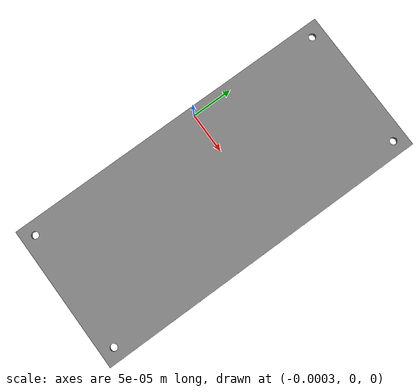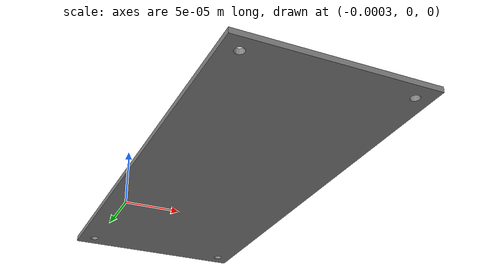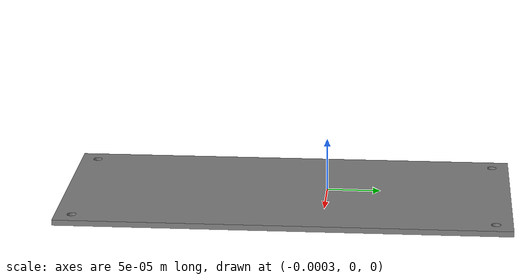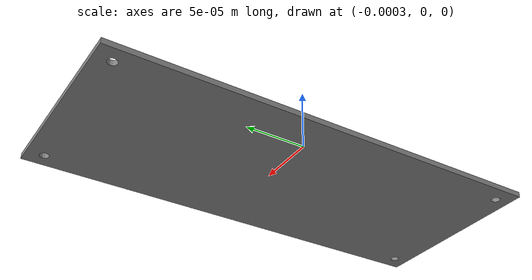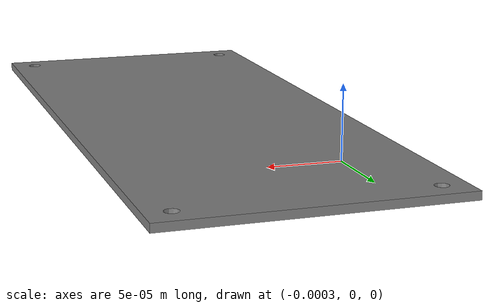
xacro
<?xml version="1.0"?>
<robot xmlns:xacro="http://www.ros.org/wiki/xacro" name="amr_robot">

  <!-- 定义属性 -->
  <xacro:property name="base_color" value="0.5 0.5 0.5 1.0"/>
  <xacro:property name="stl_scale" value="0.001 0.001 0.001"/>
  <xacro:property name="base_link_mass" value="50.0"/>

  <!-- 虚拟根链接 (world) -->
  <link name="world"/>

  <!-- base_link 通过固定关节连接到 world -->
  <joint name="fixed_base" type="fixed">
    <parent link="world"/>
    <child link="base_link"/>
    <origin xyz="0 0 0" rpy="0 0 0"/>
  </joint>

  <!-- 底盘 (base_link) -->
  <link name="base_link">
    <visual>
      <geometry>
        <mesh filename="package://amr_description/meshes/base_link.stl" scale="${stl_scale}"/>
      </geometry>
      <material name="grey">
        <color rgba="${base_color}"/>
      </material>
    </visual>
    <collision>
      <geometry>
        <mesh filename="package://amr_description/meshes/base_link.stl" scale="${stl_scale}"/>
      </geometry>
    </collision>
    <inertial>
      <mass value="${base_link_mass}"/>
      <origin xyz="0 0 0" rpy="0 0 0"/>
      <inertia ixx="1" iyy="1" izz="1" ixy="0" ixz="0" iyz="0"/>
    </inertial>
  </link>

</robot>
